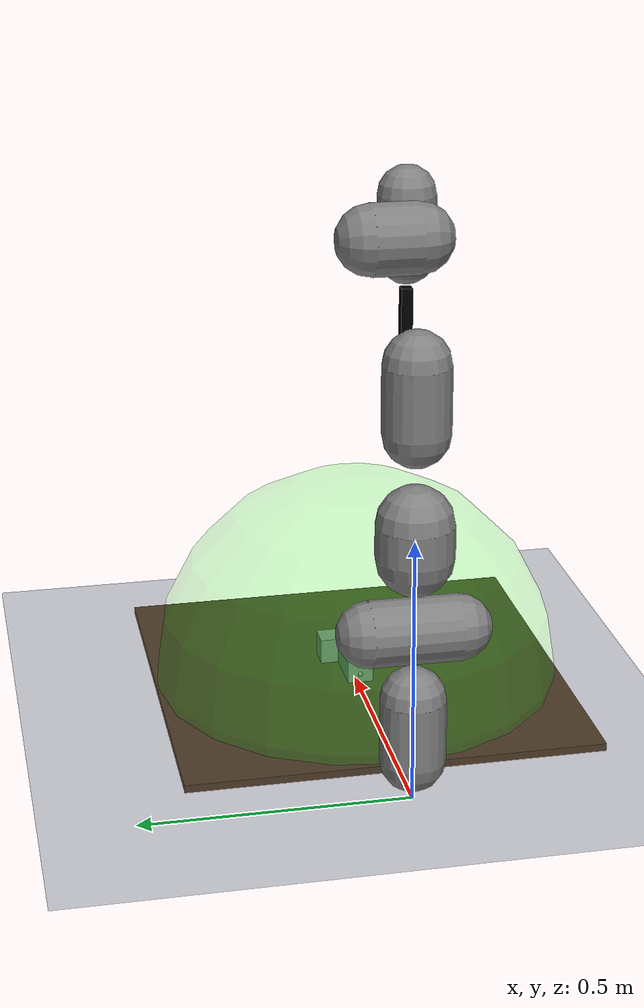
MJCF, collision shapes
<mujoco model="fr3 scene">
  <!-- NUmerical Stuff -->
  <option impratio="0.65"
          solver="Newton"
          jacobian="dense"
          cone="elliptic"
          timestep="0.025"
          iterations="5"
          ls_iterations="8">
  <flag eulerdamp="disable"
        warmstart="enable"/>
  </option>
  <custom>
    <numeric data="32" name="max_contact_points"/>
    <numeric name="maxhullverts"   data="32"/>
    <numeric data="128" name="max_geom_pairs"/>
  </custom>

  <size nconmax="64"/>
  <size njmax="1024"/>

  <!-- Defaults -->
  <default>
    <geom contype="7" conaffinity="7"/>
  </default>
  <default>
    <default class="tblock">
      <!-- friction = [slide spin roll]; keep your values -->
      <geom friction="0.1 0.0001 0.0001"
            solref="0.05 1.1"
            solimp="0.75 0.85 0.001 0.5 2"
            condim="3"
            contype="2"
            conaffinity="5"/>
    </default>

    <default class="goal">
      <geom conaffinity="0"
            contype="0"
            rgba="0 1 0 0.1"/>
    </default>

  </default>

  <!-- Push T setup -->
  <worldbody>
    <camera name='top_view' pos="-0.276 -0.512 0.817" xyaxes="0.864 -0.503 0.000 0.404 0.694 0.596"/>
    <camera name="comparison" pos="1.107 -0.076 0.436" xyaxes="0.178 0.984 -0.000 -0.466 0.084 0.881"/>
    <camera name="video_view" pos="1.455 -0.774 1.133" xyaxes="0.469 0.883 0.000 -0.500 0.266 0.824"/>

      <body name="goal" mocap="true" pos="0.5 0.0 0.04" quat="1 0 0 -1">
        <geom class="goal" name="goal_bottom" type="box" size=".025 0.05 0.025"/>
        <geom class="goal" name="goal_top" type="box" size=".06 0.025 0.025" pos="0.0 0.075 0.0"/>
      </body>

      <body name="ghost_sphere" mocap="true" pos="0.5 0.0 0.035" quat="0 0.7071068 0.7071068 0">
        <site type="sphere" size="0.4" rgba="0 1 0 0.05"/>
      </body>

      <body name="ground" pos="0.5 0.0 0.0075" quat="1 0 0 -1">
        <geom name="ground" type="box" size="0.4 0.4 0.0075"
              solref="0.06 1"
              friction="0.1 0.001 0.01"
              condim="3"
              solimp="0.65 0.75 0.001 0.5 2"
              rgba="0.295 0.227 0.15 1.0"
              contype="4" conaffinity="3"/>
      </body>

      <body name="block" pos="0.5 0.0 0.0399" quat="1 0 0 -1" >
        <joint name="T_x" type="slide" pos="0 0 0" axis="1 0 0" frictionloss="0.0" damping="0.0"/>
        <joint name="T_y" type="slide" pos="0 0 0" axis="0 1 0" frictionloss="0.0" damping="0.0"/>
        <joint name="T_z" type="hinge" axis="0 0 1" frictionloss="0.0" damping="0.0"/>
        <!-- Lower part of T -->
        <geom class="tblock" name="bottom" type="box" size=".025 0.05 0.025" pos="0.0 0.000 0.0" mass="0.0655"/>

          <site name="T_1" pos="0 -0.025 0" size="0.015" rgba="0 0 0 1"/>
          <site name="T_2" pos="0.03 0.075 0" size="0.015" rgba="0 0 0 1"/>
          <site name="T_3" pos="-0.03 0.075 0" size="0.015" rgba="0 0 0 1"/>
        <!-- Upper part ot T -->
        <geom class="tblock" name="top" type="box" size=".06 0.025 0.025" pos="0.0 0.075 0.0"  mass="0.07855"/>

      </body>
  </worldbody>

  <!-- Robot model -->
  <include file="fr3_vel_mjx.xml"/>

  <worldbody>

    <body name="sphere_carrier" pos="0.45 0 0.032" quat="0 0.7071068 0.7071068 0">
      <joint type="slide" axis="1 0 0" damping="0" frictionloss="0" armature="0" stiffness="0"/>
      <joint type="slide" axis="0 1 0" damping="0" frictionloss="0" armature="0" stiffness="0"/>
      <geom name="ee_sphere" type="sphere" size="0.015"
            friction="0 0.0 0.0"
            contype="0" conaffinity="0" rgba="0 0 0 0"/>
      <site name="sphere_site" pos="0 0 0"/>
    </body>
  </worldbody>

  <contact>
  </contact>

  <equality>
    <!-- (Linear) equality constraint for end effector -->
    <!-- Full 6 DoF equality MoCAP vs free object -->
  </equality>

  <sensor>
    <framepos name="position" objtype="body" objname="block" reftype="body" refname="goal"/>
    <framequat name="orientation" objtype="body" objname="block" reftype="body" refname="goal"/>

    <framepos name="position_world" objtype="body" objname="block"/>
    <framepos name="goal_position_world" objtype="body" objname="goal"/>

    <framequat name="orientation_world" objtype="body" objname="block"/>
    <framequat name="goal_orientation_world" objtype="body" objname="goal"/>

    <framepos name="safety" objtype="body" objname="ee_frame" reftype="body" refname="goal"/>
    <framepos name="ee_t1" objtype="body" objname="ee_frame" reftype="site" refname="T_1"/>
    <framepos name="ee_t2" objtype="body" objname="ee_frame" reftype="site" refname="T_2"/>
    <framepos name="ee_t3" objtype="body" objname="ee_frame" reftype="site" refname="T_3"/>

  </sensor>

  <!-- Defines the spatial region to compute model statistics like mass, center of mass, etc. -->
  <statistic center="0.4 0.0 0.0" extent="1.0"/>

  <asset>
    <texture type="skybox" builtin="gradient" rgb1="0.3 0.5 0.7" rgb2="0 0 0" width="512" height="3072"/>
    <texture type="2d" name="groundplane" builtin="checker" mark="edge" rgb1="0.2 0.3 0.4" rgb2="0.1 0.2 0.3"
      markrgb="0.8 0.8 0.8" width="300" height="300"/>
    <material name="groundplane" texture="groundplane" texuniform="true" texrepeat="5 5" reflectance="0.2"/>
  </asset>

  <worldbody>
    <light pos="0 1 1.5" dir="0 0 -1" directional="true"/>
    <geom name="floor" type="plane" size="0 0 0.05"
          solref="0.04 0.95"
          solimp="0.7 0.95 0.001 0.5 2"
          material="groundplane" friction="0.1 0.0001 0.0001" condim="3"
          contype="4" conaffinity="3"/>
  </worldbody>
</mujoco>

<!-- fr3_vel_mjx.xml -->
<mujoco model="fr3">
  <compiler angle="radian" meshdir="assets"/>

  <option integrator="implicitfast"/>

  <default>
    <default class="fr3">
      <joint damping="0.21" armature="0.195" frictionloss="1.137"/>
      <position inheritrange="1"/>

      <default class="visual">
        <geom type="mesh" group="2" contype="0" conaffinity="0"/>
      </default>

      <default class="collision">
        <geom group="3" contype="0" conaffinity="2"
              mass="0" density="0"/>
      </default>

      <default class="fr3_vel">
        <velocity ctrllimited="true" kv="50"/>
      </default>

      <site size="0.001" rgba="0.5 0.5 0.5 0.3" group="4"/>
    </default>
  </default>

  <asset>
    <material name="black" rgba=".2 .2 .2 1"/>
    <material name="white" rgba="1 1 1 1"/>
    <material name="red" rgba="1 0.072272 0.039546 1"/>
    <material name="gray" rgba="0.863156 0.863156 0.863157 1"/>
    <material name="button_green" rgba="0.102241 0.571125 0.102242 1"/>
    <material name="button_red" rgba="0.520996 0.008023 0.013702 1"/>
    <material name="button_blue" rgba="0.024157 0.445201 0.737911 1"/>

    <mesh file="link0_0.obj"/>
    <mesh file="link0_1.obj"/>
    <mesh file="link0_2.obj"/>
    <mesh file="link0_3.obj"/>
    <mesh file="link0_4.obj"/>
    <mesh file="link0_5.obj"/>
    <mesh file="link0_6.obj"/>
    <mesh file="link1.obj"/>
    <mesh file="link2.obj"/>
    <mesh file="link3_0.obj"/>
    <mesh file="link3_1.obj"/>
    <mesh file="link4_0.obj"/>
    <mesh file="link4_1.obj"/>
    <mesh file="link5_0.obj"/>
    <mesh file="link5_1.obj"/>
    <mesh file="link5_2.obj"/>
    <mesh file="link6_0.obj"/>
    <mesh file="link6_1.obj"/>
    <mesh file="link6_2.obj"/>
    <mesh file="link6_3.obj"/>
    <mesh file="link6_4.obj"/>
    <mesh file="link6_5.obj"/>
    <mesh file="link6_6.obj"/>
    <mesh file="link6_7.obj"/>
    <mesh file="link7_0.obj"/>
    <mesh file="link7_1.obj"/>
    <mesh file="link7_2.obj"/>
    <mesh file="link7_3.obj"/>

    <mesh name="link0_coll" file="link0.stl"/>
    <mesh name="link1_coll" file="link1.stl"/>
    <mesh name="link2_coll" file="link2.stl"/>
    <mesh name="link3_coll" file="link3.stl"/>
    <mesh name="link4_coll" file="link4.stl"/>
    <mesh name="link5_coll" file="link5.stl"/>
    <mesh name="link6_coll" file="link6.stl"/>
    <mesh name="link7_coll" file="link7.stl"/>
  </asset>

  <worldbody>
    <body name="base" childclass="fr3" gravcomp="1">
      <body name="fr3_link0" pos="0.0 0.0 0.0" gravcomp="1">
        <geom mesh="link0_0" material="black" class="visual"/>
        <geom mesh="link0_1" material="white" class="visual"/>
        <geom mesh="link0_2" material="white" class="visual"/>
        <geom mesh="link0_3" material="white" class="visual"/>
        <geom mesh="link0_4" material="white" class="visual"/>
        <geom mesh="link0_5" material="red" class="visual"/>
        <geom mesh="link0_6" material="black" class="visual"/>
        <geom type="capsule" fromto="0.0 0 0.2  0.0 0 0.08" size="0.06" class="collision"/> <!-- MJX -->
        <body name="fr3_link1" pos="0 0 0.333" gravcomp="1">
          <inertial pos="4.128e-07 -0.0181251 -0.0386036" quat="0.998098 -0.0605364 0.00380499 0.0110109" mass="2.92747"
            diaginertia="0.0239286 0.0227246 0.00610634"/>
          <joint name="fr3_joint1" axis="0 0 1" range="-2.7437 2.7437" actuatorfrcrange="-87 87"/>
          <geom type="capsule" fromto="0 -0.08 0  0 0.08 0" size="0.06" class="collision"/> <!-- MJX -->
          <geom material="white" mesh="link1" class="visual"/>
          <body name="fr3_link2" quat="1 -1 0 0" gravcomp="1">
            <inertial pos="0.00318289 -0.0743222 0.00881461" quat="0.502599 0.584437 -0.465998 0.434366" mass="2.93554"
              diaginertia="0.0629567 0.0411924 0.0246371"/>
            <joint name="fr3_joint2" axis="0 0 1" range="-1.7837 1.7837" actuatorfrcrange="-87 87"/>
            <geom material="white" mesh="link2" class="visual"/>
            <geom type="capsule" fromto="0 -0.20 0  0 -0.14 0" size="0.07" class="collision"/> <!-- MJX -->
            <body name="fr3_link3" pos="0 -0.316 0" quat="1 1 0 0" gravcomp="1">
              <inertial pos="0.0407016 -0.00482006 -0.0289731" quat="0.921025 -0.244161 0.155272 0.260745" mass="2.2449"
                diaginertia="0.0267409 0.0189869 0.0171587"/>
              <joint name="fr3_joint3" axis="0 0 1" range="-2.9007 2.9007" actuatorfrcrange="-87 87"/>
              <geom mesh="link3_0" material="white" class="visual"/>
              <geom mesh="link3_1" material="black" class="visual"/>
              <body name="fr3_link4" pos="0.0825 0 0" quat="1 1 0 0" gravcomp="1">
                <inertial pos="-0.0459101 0.0630493 -0.00851879" quat="0.438018 0.803311 0.00937812 0.403414"
                  mass="2.6156" diaginertia="0.05139 0.0372717 0.0160047"/>
                <joint name="fr3_joint4" axis="0 0 1" range="-3.0421 -0.1518" actuatorfrcrange="-87 87"/>
                <geom mesh="link4_0" material="white" class="visual"/>
                <geom mesh="link4_1" material="black" class="visual"/>
                <body name="fr3_link5" pos="-0.0825 0.384 0" quat="1 -1 0 0" gravcomp="1">
                  <inertial pos="-0.00160396 0.0292536 -0.0972966" quat="0.919031 0.125604 0.0751531 -0.366003"
                    mass="2.32712" diaginertia="0.0579335 0.0449144 0.0130634"/>
                  <joint name="fr3_joint5" axis="0 0 1" range="-2.8065 2.8065" actuatorfrcrange="-12 12"
                    armature="0.074" frictionloss="0.763"/>
                  <geom type="capsule" fromto="0 0 -0.335  0 0 -0.215" size="0.06" class="collision"/> <!-- MJX -->
                  <geom mesh="link5_0" material="white" class="visual"/>
                  <geom mesh="link5_1" material="white" class="visual"/>
                  <geom mesh="link5_2" material="black" class="visual"/>
                  <body name="fr3_link6" quat="1 1 0 0" gravcomp="1">
                    <inertial pos="0.0597131 -0.0410295 -0.0101693" quat="0.621301 0.552665 0.510011 0.220081"
                      mass="1.81704" diaginertia="0.0175039 0.0161123 0.00193529"/>
                    <joint name="fr3_joint6" axis="0 0 1" range="0.5445 4.5169" actuatorfrcrange="-12 12"
                      armature="0.074" frictionloss="0.44"/>
                    <geom mesh="link6_0" material="button_green" class="visual"/>
                    <geom mesh="link6_1" material="white" class="visual"/>
                    <geom mesh="link6_2" material="white" class="visual"/>
                    <geom mesh="link6_3" material="gray" class="visual"/>
                    <geom mesh="link6_4" material="button_red" class="visual"/>
                    <geom mesh="link6_5" material="white" class="visual"/>
                    <geom mesh="link6_6" material="black" class="visual"/>
                    <geom mesh="link6_7" material="button_blue" class="visual"/>
                    <geom type="capsule" fromto="0 0 -0.08  0 0 0.0" size="0.06" class="collision"/> <!-- MJX -->
                    <body name="fr3_link7" pos="0.088 0 0" quat="1 1 0 0" gravcomp="1">
                      <inertial pos="0.00452258 0.00862619 -0.0161633" quat="0.727579 0.0978688 -0.24906 0.63168"
                        mass="0.627143" diaginertia="0.000223836 0.000223642 5.64132e-07"/>
                      <joint name="fr3_joint7" axis="0 0 1" range="-3.0159 3.0159" actuatorfrcrange="-12 12"
                        armature="0.074" frictionloss="0.248"/>
                      <geom mesh="link7_0" material="black" class="visual"/>
                      <geom mesh="link7_1" material="white" class="visual"/>
                      <geom mesh="link7_2" material="white" class="visual"/>
                      <geom mesh="link7_3" material="black" class="visual"/>
                      <geom type="capsule" fromto="0 0 -0.05  0 0 0.05" size="0.05" class="collision"/> <!-- MJX -->
                      <!-- This is basically link 8 from ROS -->
                      <body name="pusher" pos="0 0 0.107" gravcomp="1">
                        <!-- Long box as arm -->
                        <geom type="box" size="0.01 0.01 0.0625" pos="0 0 0.0625" rgba="0.0 0.0 0.0 1" class="visual"/>
                        <!-- Sphere at the tip of the box to act as end effector -->
                        <body name="ee_frame" pos="0 0 0.125" gravcomp="1">
                          <geom type="sphere"
                                size="0.015"
                                pos="0 0 0"
                                rgba="0 0 0 1"
                                solref="0.04 0.95"
                                margin="0.0001"
                                gap="0.00005"
                                solimp="0.9 0.95 0.001 0.5 2"
                                friction="0.05 0.001 0.0001"
                                condim="3"
                                contype="1" conaffinity="4"/>
                          <site name="ee_site" pos="0 0 0.0" size="0.015" rgba="0 0 0 1"/>
                        </body>
                      </body>

                    </body>
                  </body>
                </body>
              </body>
            </body>
          </body>
        </body>
      </body>
    </body>
  </worldbody>

  <!-- Limits taken from Franka Robot Description repo -->
  <actuator>
    <velocity class="fr3_vel" name="vel_joint1" joint="fr3_joint1" ctrlrange="-2.62  2.62"/>
    <velocity class="fr3_vel" name="vel_joint2" joint="fr3_joint2" ctrlrange="-2.62  2.62"/>
    <velocity class="fr3_vel" name="vel_joint3" joint="fr3_joint3" ctrlrange="-2.62  2.62"/>
    <velocity class="fr3_vel" name="vel_joint4" joint="fr3_joint4" ctrlrange="-2.62  2.62"/>
    <velocity class="fr3_vel" name="vel_joint5" joint="fr3_joint5" ctrlrange="-5.26  5.26"/>
    <velocity class="fr3_vel" name="vel_joint6" joint="fr3_joint6" ctrlrange="-4.18  4.18"/>
    <velocity class="fr3_vel" name="vel_joint7" joint="fr3_joint7" ctrlrange="-5.26  5.26"/>
  </actuator>

  <contact>
    <exclude body1="fr3_link0" body2="fr3_link1"/>
    <exclude body1="fr3_link1" body2="fr3_link2"/>
    <exclude body1="fr3_link6" body2="fr3_link7"/>
  </contact>

  <!-- Clashes with additional joint definitions in push T scene -->

  <sensor>
    <framepos name="ee_frame_pos" objtype="body" objname="ee_frame" reftype="body" refname="world"/>
    <framequat name="ee_frame_quat" objtype="body" objname="ee_frame" reftype="body" refname="world"/>
  </sensor>

</mujoco>
